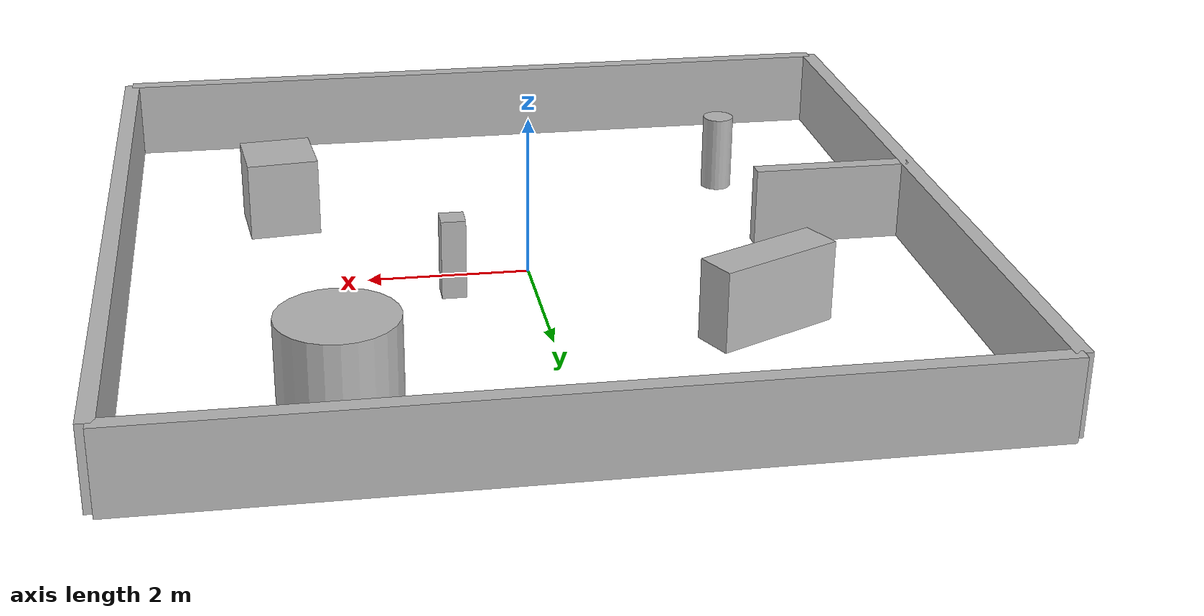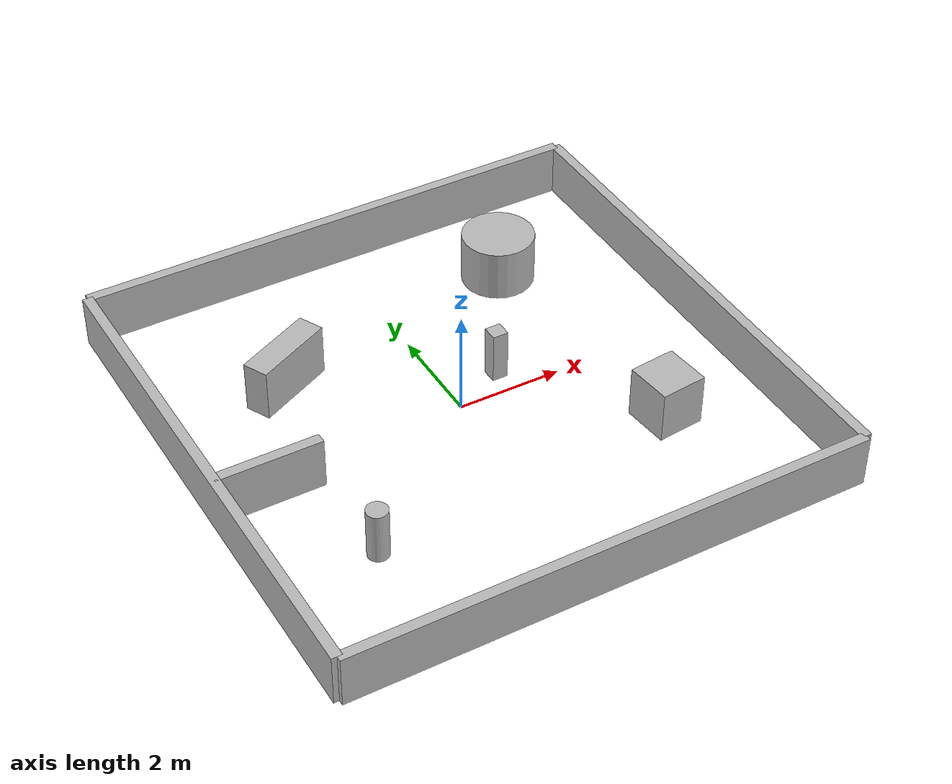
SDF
<?xml version='1.0' encoding='utf-8'?>
<sdf version="1.6">
    <world name="simple_world">

        <gravity>0 0 -9.8</gravity>
        <physics default="0" name="default_physics" type="ode">
            <max_step_size>0.001</max_step_size>
            <real_time_factor>1</real_time_factor>
            <real_time_update_rate>1000</real_time_update_rate>
        </physics>

        <gui fullscreen="0">
            <plugin filename="MinimalScene" name="WareGV">
                <gz-gui>
                    <title>WareGv</title>
                    <property type="bool" key="show_title_bar">false</property>
                    <property type="string" key="state">docked</property>
                </gz-gui>
                <engine>ogre2</engine>
                <scene>scene</scene>
                <ambient_light>0.4 0.4 0.4</ambient_light>
                <background_color>0.8 0.8 0.8</background_color>
                <camera_pose>0.0 -8.0 10.0 0 0.9 1.57</camera_pose>
            </plugin>
            <plugin filename="GzSceneManager" name="Scene Manager">
                <gz-gui>
                    <property key="resizable" type="bool">false</property>
                    <property key="width" type="double">0</property>
                    <property key="height" type="double">0</property>
                    <property key="x" type="double">-1000</property>
                    <property key="y" type="double">-1000</property>
                    <property key="state" type="string">floating</property>
                    <property key="show_title_bar" type="bool">false</property>
                    <property key="visible" type="bool">false</property>
                </gz-gui>
            </plugin>
            <plugin filename="InteractiveViewControl" name="Interactive view control">
                <gz-gui>
                    <property key="resizable" type="bool">false</property>
                    <property key="width" type="double">0</property>
                    <property key="height" type="double">0</property>
                    <property key="x" type="double">-1000</property>
                    <property key="y" type="double">-1000</property>
                    <property key="state" type="string">floating</property>
                    <property key="show_title_bar" type="bool">false</property>
                    <property key="visible" type="bool">false</property>
                </gz-gui>
            </plugin>
        </gui>

        <!-- Light Source -->
        <light name="Light" type="point">
            <pose frame="">0 0 12 0 0 0</pose>
            <diffuse>0.6 0.6 0.6 1</diffuse>
            <specular>0.2 0.2 0.2 1</specular>
            <attenuation>
                <range>100</range>
                <constant>0.3</constant>
                <linear>0.01</linear>
                <quadratic>0.001</quadratic>
            </attenuation>
            <cast_shadows>1</cast_shadows>
            <direction>0.1 0.1 -1</direction>
        </light>

        <!-- Ground Plane -->
        <model name="ground_plane">
            <static>true</static>
            <link name="link">
                <collision name="collision">
                    <geometry>
                        <plane>
                            <normal>0 0 1</normal>
                            <size>150 150</size>
                        </plane>
                    </geometry>
                </collision>
            </link>
        </model>

        <!--     HIGH-ASYMMETRY 10m x 10m NAVIGATION ARENA        -->

        <!-- Enclosure Wall North -->
        <model name="wall_north">
            <static>true</static>
            <pose>0 5.0 0.5 0 0 0</pose>
            <link name="link">
                <collision name="collision"><geometry><box><size>10.0 0.2 1.0</size></box></geometry></collision>
                <visual name="visual"><geometry><box><size>10.0 0.2 1.0</size></box></geometry></visual>
            </link>
        </model>

        <!-- Enclosure Wall South -->
        <model name="wall_south">
            <static>true</static>
            <pose>0 -5.0 0.5 0 0 0</pose>
            <link name="link">
                <collision name="collision"><geometry><box><size>10.0 0.2 1.0</size></box></geometry></collision>
                <visual name="visual"><geometry><box><size>10.0 0.2 1.0</size></box></geometry></visual>
            </link>
        </model>

        <!-- Enclosure Wall East -->
        <model name="wall_east">
            <static>true</static>
            <pose>5.0 0 0.5 0 0 1.5708</pose>
            <link name="link">
                <collision name="collision"><geometry><box><size>10.0 0.2 1.0</size></box></geometry></collision>
                <visual name="visual"><geometry><box><size>10.0 0.2 1.0</size></box></geometry></visual>
            </link>
        </model>

        <!-- Enclosure Wall West -->
        <model name="wall_west">
            <static>true</static>
            <pose>-5.0 0 0.5 0 0 1.5708</pose>
            <link name="link">
                <collision name="collision"><geometry><box><size>10.0 0.2 1.0</size></box></geometry></collision>
                <visual name="visual"><geometry><box><size>10.0 0.2 1.0</size></box></geometry></visual>
            </link>
        </model>

        <!--           ASYMMETRIC INTERNAL STRUCTURES            -->

        <!-- Top Right: Large Massive Cylinder Anchor -->
        <model name="anchor_large_cylinder">
            <static>true</static>
            <pose>2.5 3.0 0.5 0 0 0</pose>
            <link name="link">
                <collision name="collision"><geometry><cylinder><radius>0.7</radius><length>1.0</length></cylinder></geometry></collision>
                <visual name="visual"><geometry><cylinder><radius>0.7</radius><length>1.0</length></cylinder></geometry></visual>
            </link>
        </model>

        <!-- Bottom Left: Tiny Cylindrical Post -->
        <model name="anchor_small_cylinder">
            <static>true</static>
            <pose>-3.0 -2.5 0.5 0 0 0</pose>
            <link name="link">
                <collision name="collision"><geometry><cylinder><radius>0.2</radius><length>1.0</length></cylinder></geometry></collision>
                <visual name="visual"><geometry><cylinder><radius>0.2</radius><length>1.0</length></cylinder></geometry></visual>
            </link>
        </model>

        <!-- Top Left: Rectangular Long Barrier -->
        <model name="anchor_long_box">
            <static>true</static>
            <pose>-2.5 2.0 0.5 0 0 0.45</pose> <!-- Rotated at 0.45 rad to break orthogonal grid lines -->
            <link name="link">
                <collision name="collision"><geometry><box><size>1.6 0.5 1.0</size></box></geometry></collision>
                <visual name="visual"><geometry><box><size>1.6 0.5 1.0</size></box></geometry></visual>
            </link>
        </model>

        <!-- Bottom Right: Standard Heavy Block -->
        <model name="anchor_square_box">
            <static>true</static>
            <pose>3.0 -2.0 0.5 0 0 0.1</pose>
            <link name="link">
                <collision name="collision"><geometry><box><size>0.9 0.9 1.0</size></box></geometry></collision>
                <visual name="visual"><geometry><box><size>0.9 0.9 1.0</size></box></geometry></visual>
            </link>
        </model>

        <!-- Off-Center Partition Spur Wall (Completely breaks left/right symmetry) -->
        <model name="asymmetric_spur_wall">
            <static>true</static>
            <pose>-4.0 -0.5 0.5 0 0 0</pose>
            <link name="link">
                <collision name="collision"><geometry><box><size>2.0 0.2 1.0</size></box></geometry></collision>
                <visual name="visual"><geometry><box><size>2.0 0.2 1.0</size></box></geometry></visual>
            </link>
        </model>

        <!-- Isolated Small Column near Center Center-East -->
        <model name="center_east_dot">
            <static>true</static>
            <pose>1.0 0.5 0.5 0 0 0</pose>
            <link name="link">
                <collision name="collision"><geometry><box><size>0.3 0.3 1.0</size></box></geometry></collision>
                <visual name="visual"><geometry><box><size>0.3 0.3 1.0</size></box></geometry></visual>
            </link>
        </model>

    </world>
</sdf>
